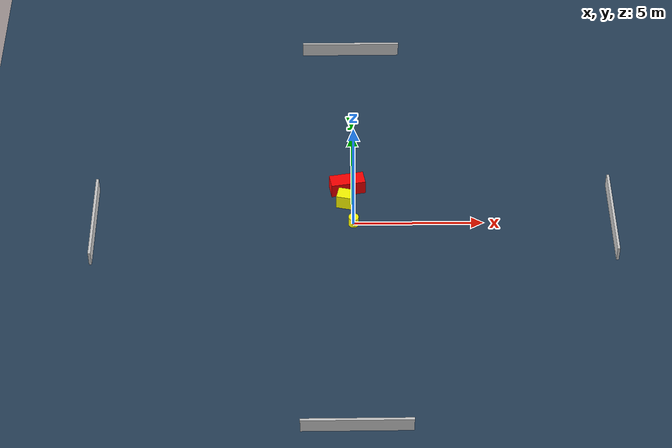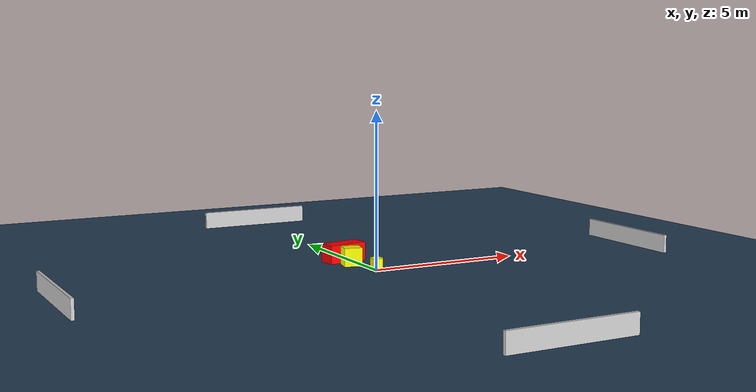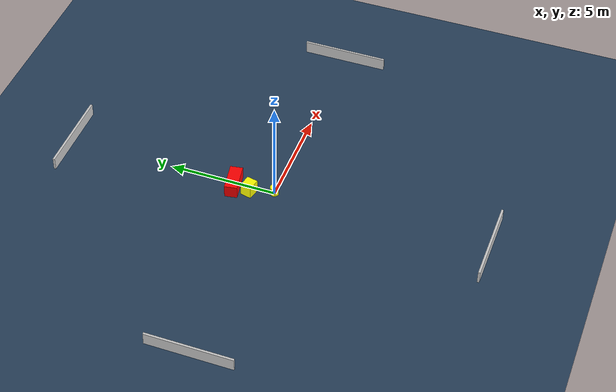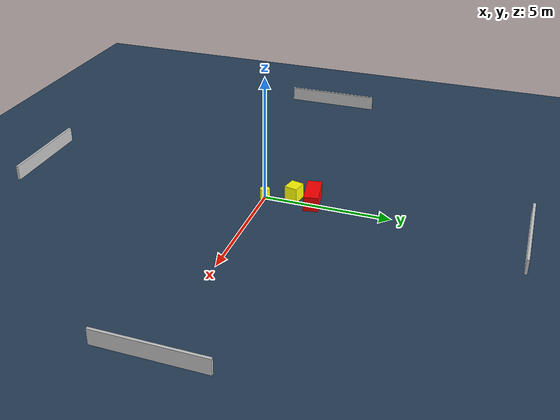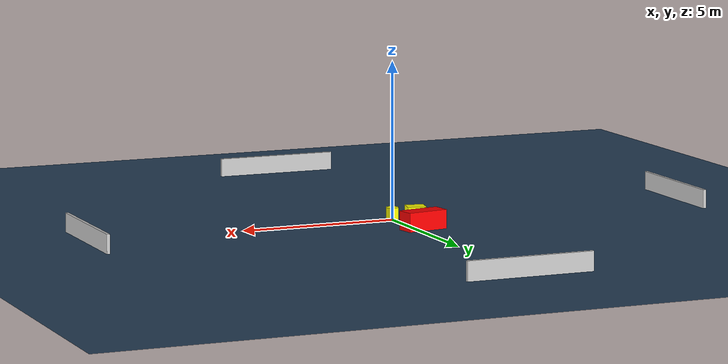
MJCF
<?xml version="1.0" ?>
<mujoco model="generated_environment">
  <option timestep="0.01" integrator="RK4" cone="elliptic"/>
  <default>
    <geom density="1"/>
  </default>
  <asset>
    <texture builtin="gradient" height="3072" name="skybox" rgb1="0.3 0.5 0.7" rgb2="0 0 0" type="skybox" width="512"/>
    <texture builtin="checker" height="300" name="groundplane" rgb1="0.2 0.3 0.4" rgb2="0.1 0.2 0.3" type="2d" width="300"/>
    <material name="groundplane" reflectance="0.2" texrepeat="5 5" texture="groundplane"/>
  </asset>
  <worldbody>
    <light dir="0 0 -1" directional="true" pos="0 0 1.5"/>
    <geom condim="3" friction="0.5 0.005 0.001" material="groundplane" name="floor" pos="0 0 0" size="0 0 0.05" type="plane"/>
    <body name="walls">
      <geom name="wall_1" condim="4" pos="-10.0 0.0 0.3" rgba="0.800000011920929 0.800000011920929 0.800000011920929 1.0" size="0.05 2.0 0.3" type="box"/>
      <geom name="wall_2" condim="4" pos="10.0 0.0 0.3" rgba="0.800000011920929 0.800000011920929 0.800000011920929 1.0" size="0.05 2.0 0.3" type="box"/>
      <geom name="wall_3" condim="4" pos="0.0 -10.0 0.3" rgba="0.800000011920929 0.800000011920929 0.800000011920929 1.0" size="2.0 0.05 0.3" type="box"/>
      <geom name="wall_4" condim="4" pos="0.0 10.0 0.3" rgba="0.800000011920929 0.800000011920929 0.800000011920929 1.0" size="2.0 0.05 0.3" type="box"/>
    </body>
    <body name="robot">
      <joint name="joint_x" type="slide" pos="0 0 0" axis="1 0 0"/>
      <joint name="joint_y" type="slide" pos="0 0 0" axis="0 1 0"/>
      <geom name="robot" type="cylinder" pos="0.0 0.0 0.2" size="0.2 0.2 0.0" mass="5.0" friction="1.0 0.005 0.0001" condim="4" rgba="1.0 1.0 0.0 1.0"/>
    </body>
    <body name="obstacle_1_movable">
      <geom name="obstacle_1_movable" condim="4" pos="-0.3176451536820349 1.0976267162670998 0.3" euler="0 0 347.3155812896392" friction="0.0 0.005 0.001" rgba="1.0 1.0 0.0 1.0" size="0.29472113837226743 0.25905509355004713 0.3" type="box" mass="0.1"/>
      <joint type="free"/>
    </body>
    <body name="obstacle_2_static">
      <geom name="obstacle_2_static" condim="4" pos="-0.22493352380225518 1.8802461009547582 0.3" euler="0 0 189.6217826178473" friction="0.0 0.005 0.001" rgba="1.0 0.0 0.0 1.0" size="0.671563065311745 0.29064584396142024 0.3" type="box"/>
    </body>
  </worldbody>
  <actuator>
    <motor name="actuator_x" joint="joint_x" gear="1" ctrlrange="-1 1"/>
    <motor name="actuator_y" joint="joint_y" gear="1" ctrlrange="-1 1"/>
  </actuator>
</mujoco>
